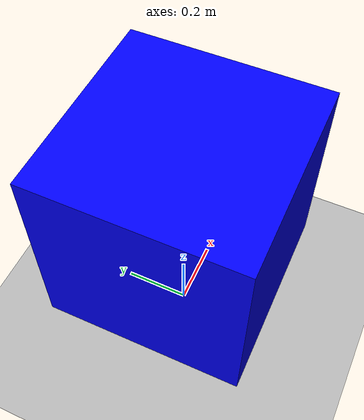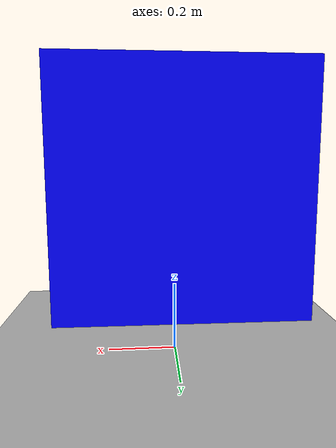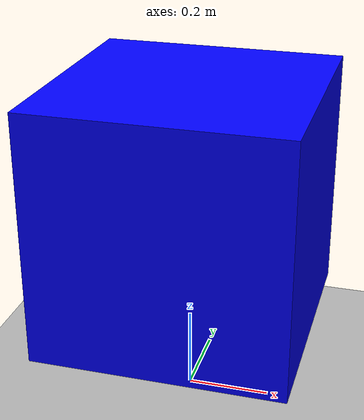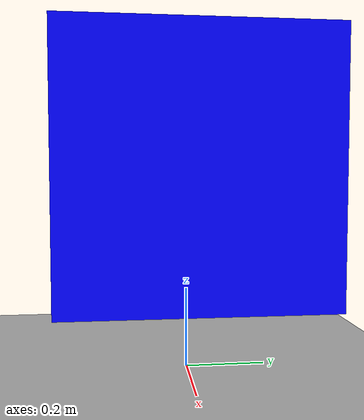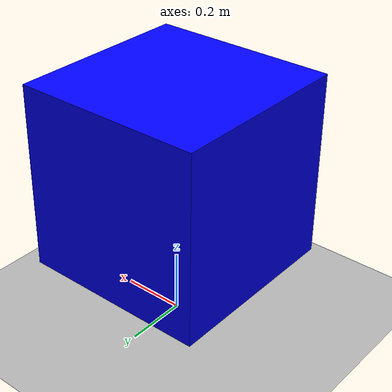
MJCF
<mujoco>
  <option gravity="0 0 -9.81" />
  <worldbody>
    <body name="object_3" pos="-2 0 0">
      <geom type="plane" size="3 3 0.1" friction="0.2 0.2 0.2" rgba="0.7 0.7 0.7 1" />
    </body>
    <body name="object_2" pos="2 0 0">
      <geom type="plane" size="3 3 0.1" friction="1 1 1" rgba="0.4 0.4 0.4 1" />
    </body>
    <body name="object_1" pos="0 0 0.5">
      <geom type="box" size="0.3 0.3 0.3" mass="1" rgba="0 0 1 1" />
      <joint type="free" name="object_1_joint" />
    </body>
    <body name="object_4" pos="0 0 2" />
  </worldbody>
</mujoco>
